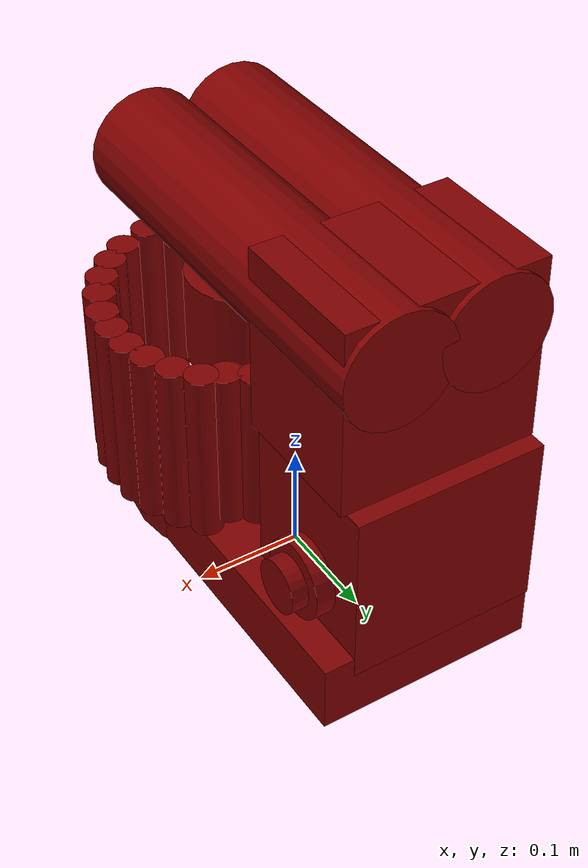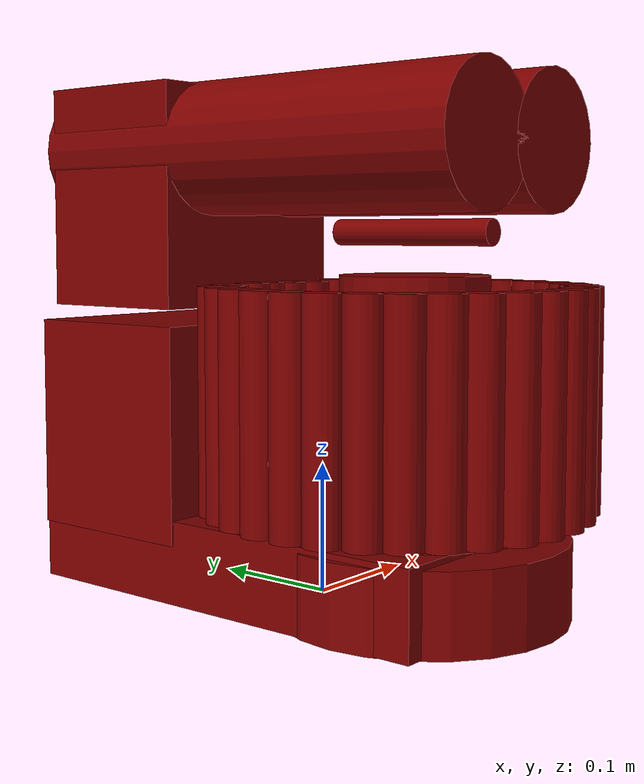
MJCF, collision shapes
<mujoco model="model">
  <compiler angle="radian"/>
  <asset>
    <mesh file="visuals/FoodMixer002_Lid001.obj" name="FoodMixer002_Lid_vis"/>
    <mesh file="visuals/FoodMixer002_Body001.obj" name="FoodMixer002_Body_vis"/>
    <mesh file="visuals/FoodMixer002_Knob001.obj" name="FoodMixer002_Knob_vis"/>
    <mesh file="visuals/FoodMixer002_Button001.obj" name="FoodMixer002_Button_vis"/>
    <mesh file="visuals/FoodMixer002_Rotate001.obj" name="FoodMixer002_Rotate_vis"/>
    <mesh file="visuals/FoodMixer002_Container001.obj" name="FoodMixer002_Container_vis"/>
    <texture file="visuals/T_FoodMixer002_BC001.png" name="T_FoodMixer002_BC001" type="2d"/>
    <material name="material" rgba="1 1 1 1" texture="T_FoodMixer002_BC001"/>
  </asset>
  <default>
    <default class="visual">
      <geom conaffinity="0" contype="0" group="1" type="mesh"/>
    </default>
    <default class="collision">
      <geom group="0" rgba="0.5 0 0 0.5"/>
    </default>
    <default class="region">
      <geom group="1" conaffinity="0" contype="0" rgba="0 1 0 0"/>
    </default>
  </default>
  <worldbody>
    <body>
      <body name="object">
        <geom mesh="FoodMixer002_Body_vis" type="mesh" solimp="0.998 0.998 0.001" solref="0.001 1" density="100" friction="0.95 0.3 0.1" class="visual" material="material"/>
        <geom class="collision" type="box" pos="-0.0015425290912389755 0.02298780530691147 0.0321199968457222" size="0.17999836802482605 0.10231996327638626 0.03178338706493378" quat="0.7071067094802856 -5.760115939779098e-08 5.7601170055932016e-08 -0.7071068286895752"/>
        <geom class="collision" type="cylinder" pos="-0.0015425384044647217 -0.09563595801591873 0.029541853815317154" size="0.1080017238855362 0.02991131879389286" quat="0.7071067094802856 -5.760115939779098e-08 5.7601170055932016e-08 -0.7071068286895752"/>
        <geom class="collision" type="box" pos="-0.016390308737754822 0.13098004460334778 0.12698382139205933" size="0.07216949760913849 0.08901718258857727 0.08198466897010803" quat="0.7071067094802856 -5.760115939779098e-08 5.7601170055932016e-08 -0.7071068286895752"/>
        <geom class="collision" type="cylinder" pos="0.08591173589229584 0.1452445387840271 0.11774858087301254" size="0.03547084704041481 0.008511711843311787" quat="0.4999997913837433 0.5000000596046448 -0.5000001788139343 -0.4999999403953552"/>
        <body name="FoodMixer002_Container">
          <joint axis="0 0 1" pos="-0.004335393663495779 -0.07959786802530289 0.059995658695697784" limited="true" name="FoodMixer002_Container_joint" range="0.0 0.01" type="slide" damping="2" frictionloss="2" armature=".01"/>
          <geom mesh="FoodMixer002_Container_vis" type="mesh" solimp="0.998 0.998 0.001" solref="0.001 1" density="100" friction="0.95 0.3 0.1" class="visual" material="material"/>
          <geom class="collision" type="cylinder" pos="-0.001966625452041626 -0.0872163251042366 0.07138296961784363" size="0.10042181611061096 0.004138550255447626" quat="0.7071067094802856 -5.760115939779098e-08 5.7601170055932016e-08 -0.7071068286895752"/>
          <geom class="collision" type="cylinder" pos="0.06330902874469757 -0.1884673535823822 0.15832911431789398" size="0.014615052379667759 0.0822562500834465" quat="0.7071067094802856 -3.5001043841020874e-08 5.769563671265132e-08 -0.7071068286895752"/>
          <geom class="collision" type="cylinder" pos="0.10197300463914871 -0.15531916916370392 0.15832911431789398" size="0.014615054242312908 0.0822562500834465" quat="0.9797985553741455 3.698636774629449e-08 -7.549304292808756e-09 -0.19998711347579956"/>
          <geom class="collision" type="cylinder" pos="0.12576672434806824 -0.10827875137329102 0.15832926332950592" size="0.014615045860409737 0.0822562500834465" quat="0.999999463558197 7.249906957440544e-06 -7.405649427028038e-09 -0.001021504052914679"/>
          <geom class="collision" type="cylinder" pos="0.12955844402313232 -0.057491645216941833 0.15832911431789398" size="0.014615053310990334 0.0822562500834465" quat="0.9815438389778137 -2.1452320808634795e-08 -4.179624646383218e-09 0.19123739004135132"/>
          <geom class="collision" type="cylinder" pos="0.11336427927017212 -0.00805673748254776 0.15832912921905518" size="0.01461505051702261 0.0822562500834465" quat="0.9248837828636169 -2.0213974494254217e-08 -8.310625965179952e-09 0.380249947309494"/>
          <geom class="collision" type="cylinder" pos="0.08025802671909332 0.02089858055114746 0.16427890956401825" size="0.014615053310990334 0.07610861957073212" quat="0.8345335125923157 3.1502761288493275e-08 2.0798054833903734e-08 0.550957202911377"/>
          <geom class="collision" type="cylinder" pos="0.03404930606484413 0.04011060670018196 0.18572087585926056" size="0.014569642953574657 0.05378526449203491" quat="0.7104380130767822 -1.5527117369629195e-08 -1.5381159457206195e-08 0.7037597894668579"/>
          <geom class="collision" type="cylinder" pos="-0.015409901738166809 0.042957551777362823 0.18616722524166107" size="0.013327748514711857 0.05414186045527458" quat="0.561896026134491 -1.2280633399086582e-08 -1.8079205688081856e-08 0.8272078633308411"/>
          <geom class="collision" type="cylinder" pos="-0.0668814554810524 0.03555751591920853 0.18175889551639557" size="0.014615052379667759 0.05804670602083206" quat="0.38605672121047974 -1.7102545157854365e-08 5.435497052452831e-10 0.9224750399589539"/>
          <geom class="collision" type="cylinder" pos="-0.1056489422917366 0.009229324758052826 0.15832911431789398" size="0.014615057036280632 0.0822562500834465" quat="0.20151934027671814 1.961863382859974e-08 9.53563343841779e-08 0.9794845581054688"/>
          <geom class="collision" type="cylinder" pos="-0.12804153561592102 -0.03257571905851364 0.15832912921905518" size="0.014615059830248356 0.0822562500834465" quat="0.022922730073332787 1.0429444863291337e-08 4.548619472188875e-07 0.9997372627258301"/>
          <geom class="collision" type="cylinder" pos="-0.13405369222164154 -0.08314799517393112 0.15832911431789398" size="0.014615052379667759 0.0822562500834465" quat="0.16969403624534607 -5.428152860531554e-08 3.1523958909929206e-07 -0.9854968190193176"/>
          <geom class="collision" type="cylinder" pos="-0.12009742856025696 -0.13313165307044983 0.15832911431789398" size="0.014615052379667759 0.0822562500834465" quat="0.3594556152820587 -7.856150396889916e-09 2.039490532013133e-08 -0.9331622123718262"/>
          <geom class="collision" type="cylinder" pos="-0.08875609934329987 -0.17327426373958588 0.15832911431789398" size="0.014615052379667759 0.0822562500834465" quat="0.5321423411369324 -4.888392268753705e-08 6.016173870193597e-08 -0.8466548919677734"/>
          <geom class="collision" type="cylinder" pos="-0.04285569489002228 -0.1991988867521286 0.15832911431789398" size="0.014615049585700035 0.0822562500834465" quat="0.6899731755256653 -5.620545096007845e-08 5.896384180914538e-08 -0.7238349318504333"/>
          <geom class="collision" type="cylinder" pos="0.007704302668571472 -0.20531444251537323 0.15832912921905518" size="0.014615051448345184 0.0822562500834465" quat="0.8162537813186646 -6.649231210076323e-08 4.705910683355796e-08 -0.5776934623718262"/>
          <geom class="collision" type="cylinder" pos="0.08384733647108078 -0.17370820045471191 0.15832911431789398" size="0.014615051448345184 0.0822562500834465" quat="0.7717844843864441 -4.038338730083524e-08 5.4065161236849235e-08 -0.635884165763855"/>
          <geom class="collision" type="cylinder" pos="0.11545589566230774 -0.1337757110595703 0.15832911431789398" size="0.014615053310990334 0.0822562500834465" quat="0.9944820404052734 3.754065502903359e-08 -3.960121119916948e-09 -0.10490677505731583"/>
          <geom class="collision" type="cylinder" pos="0.12981119751930237 -0.08305227756500244 0.15832926332950592" size="0.014615045860409737 0.0822562500834465" quat="0.9954696893692017 7.21706828699098e-06 6.893166641930293e-07 0.09507929533720016"/>
          <geom class="collision" type="cylinder" pos="0.12381719052791595 -0.032477784901857376 0.15832911431789398" size="0.014615053310990334 0.0822562500834465" quat="0.9586241245269775 -2.0951395285351282e-08 -6.221765769254262e-09 0.28467488288879395"/>
          <geom class="collision" type="cylinder" pos="0.09846508502960205 0.012946121394634247 0.15832912921905518" size="0.01461505051702261 0.0822562500834465" quat="0.8840628862380981 -1.9321811706163317e-08 -1.0214652235163157e-08 0.4673679769039154"/>
          <geom class="collision" type="cylinder" pos="0.06043103337287903 0.03503335267305374 0.16427890956401825" size="0.014615052379667759 0.07610861957073212" quat="0.777726411819458 2.9358361075537687e-08 2.3729105791403526e-08 0.628602921962738"/>
          <geom class="collision" type="cylinder" pos="0.01140042394399643 0.04505070298910141 0.18572087585926056" size="0.014569642953574657 0.05378526449203491" quat="0.639521598815918 -1.3977190072012036e-08 -1.6802070845756134e-08 0.7687731385231018"/>
          <geom class="collision" type="cylinder" pos="-0.03768995404243469 0.03838338702917099 0.18616722524166107" size="0.013327748514711857 0.05414186045527458" quat="0.47980427742004395 -1.0486458812408728e-08 -1.9175654841774303e-08 0.8773755431175232"/>
          <geom class="collision" type="cylinder" pos="-0.08679524064064026 0.021273374557495117 0.18175889551639557" size="0.014615052379667759 0.05804670602083206" quat="0.29562386870384216 -1.7075629799023773e-08 -1.1024519075419903e-09 0.9553044438362122"/>
          <geom class="collision" type="cylinder" pos="-0.1198100745677948 -0.011984899640083313 0.15832911431789398" size="0.014615057036280632 0.0822562500834465" quat="0.10646199434995651 1.0364460401035558e-08 9.680030643721693e-08 0.9943167567253113"/>
          <geom class="collision" type="cylinder" pos="-0.13379168510437012 -0.057301610708236694 0.15832912921905518" size="0.014615058898925781 0.0822562500834465" quat="0.07325419038534164 3.332927533961083e-08 -4.5375909962785954e-07 -0.9973133206367493"/>
          <geom class="collision" type="cylinder" pos="-0.1300181895494461 -0.10809001326560974 0.15832911431789398" size="0.014615052379667759 0.0822562500834465" quat="0.2636110484600067 -8.432359521748367e-08 3.0856443800075795e-07 -0.964629054069519"/>
          <geom class="collision" type="cylinder" pos="-0.10675767809152603 -0.15448066592216492 0.15832911431789398" size="0.014615053310990334 0.0822562500834465" quat="0.44746527075767517 -9.779663301401342e-09 1.9545575824508887e-08 -0.8943012952804565"/>
          <geom class="collision" type="cylinder" pos="-0.068315789103508 -0.18788620829582214 0.15832911431789398" size="0.014615051448345184 0.0822562500834465" quat="0.6110397577285767 -5.4439006191842054e-08 5.518577950169856e-08 -0.7915999293327332"/>
          <geom class="collision" type="cylinder" pos="-0.01830366626381874 -0.20455113053321838 0.15832911431789398" size="0.014615049585700035 0.0822562500834465" quat="0.7563377618789673 -6.161153009998088e-08 5.3289838319869887e-08 -0.6541813611984253"/>
          <geom class="collision" type="cylinder" pos="0.032492466270923615 -0.2008814811706543 0.15832912921905518" size="0.014615051448345184 0.0822562500834465" quat="0.8679903149604797 -7.07067897565139e-08 4.0451666905028105e-08 -0.496581107378006"/>
        </body>
        <body name="FoodMixer002_Knob">
          <joint axis="-1 0 0" pos="0.10195992141962051 0.14499686658382416 0.11791636049747467" limited="true" name="FoodMixer002_Knob_joint" range="0.0 3.141592653589793" type="hinge" damping="2" frictionloss="2" armature=".01"/>
          <geom mesh="FoodMixer002_Knob_vis" type="mesh" solimp="0.998 0.998 0.001" solref="0.001 1" density="100" friction="0.95 0.3 0.1" class="visual" material="material"/>
          <geom class="collision" type="cylinder" pos="0.10269086062908173 0.1452445536851883 0.11774859577417374" size="0.02414749376475811 0.0075781154446303844" quat="0.4999997913837433 0.5000000596046448 -0.5000001788139343 -0.4999999403953552"/>
        </body>
        <body name="FoodMixer002_Lid">
          <joint axis="-1 0 0" pos="0.0014321280177682638 0.20353589951992035 0.2136026918888092" limited="true" name="FoodMixer002_Lid_joint" range="0.0 1.5707963267948966" type="hinge" damping="2" frictionloss="2" armature=".01"/>
          <geom mesh="FoodMixer002_Lid_vis" type="mesh" solimp="0.998 0.998 0.001" solref="0.001 1" density="100" friction="0.95 0.3 0.1" class="visual" material="material"/>
          <geom class="collision" type="box" pos="-0.0057328492403030396 0.13306300342082977 0.3059299886226654" size="0.06413303315639496 0.09096284210681915 0.08486922085285187" quat="0.7071067094802856 -5.760115939779098e-08 5.7601170055932016e-08 -0.7071068286895752"/>
          <geom class="collision" type="cylinder" pos="-0.003770284354686737 -0.08780883997678757 0.27868297696113586" size="0.009613879956305027 0.06693771481513977" quat="0.49999991059303284 -0.5000001192092896 -0.49999988079071045 -0.5000000596046448"/>
          <geom class="collision" type="cylinder" pos="0.03866000846028328 0.012310473248362541 0.34254708886146545" size="0.05129697918891907 0.19036249816417694" quat="0.5000000596046448 -0.5 -0.5 -0.4999999701976776"/>
          <geom class="collision" type="cylinder" pos="-0.04765848442912102 0.012310478836297989 0.34254708886146545" size="0.05129697918891907 0.19036249816417694" quat="0.5000000596046448 -0.5 -0.5 -0.4999999701976776"/>
          <body name="FoodMixer002_Rotate">
            <joint axis="0 0 1" pos="-0.005287608131766319 -0.08877906203269958 0.22498783469200134" limited="false" name="FoodMixer002_Rotate_joint" range="0 360" type="hinge" damping="2" frictionloss="2" armature=".01"/>
            <geom mesh="FoodMixer002_Rotate_vis" type="mesh" solimp="0.998 0.998 0.001" solref="0.001 1" density="100" friction="0.95 0.3 0.1" class="visual" material="material"/>
            <geom class="collision" type="cylinder" pos="-0.005446970462799072 -0.089988112449646 0.20339317619800568" size="0.054679155349731445 0.044776927679777145" quat="0.7071067094802856 0.0 -0.0 -0.7071068286895752"/>
          </body>
        </body>
        <geom class="region" name="reg_main_body" type="box" pos="-0.004335410892963409 -0.0047169029712677 0.1986706554889679" size="0.1332525610923767 0.20813339948654175 0.1986706554889679"/>
      </body>
    </body>
  </worldbody>
  <actuator>
    <motor name="FoodMixer002_Container_joint_actuator" joint="FoodMixer002_Container_joint" gear="10"/>
    <motor name="FoodMixer002_Knob_joint_actuator" joint="FoodMixer002_Knob_joint" gear="10"/>
    <motor name="FoodMixer002_Lid_joint_actuator" joint="FoodMixer002_Lid_joint" gear="10"/>
    <motor name="FoodMixer002_Rotate_joint_actuator" joint="FoodMixer002_Rotate_joint" gear="10"/>
  </actuator>
</mujoco>
